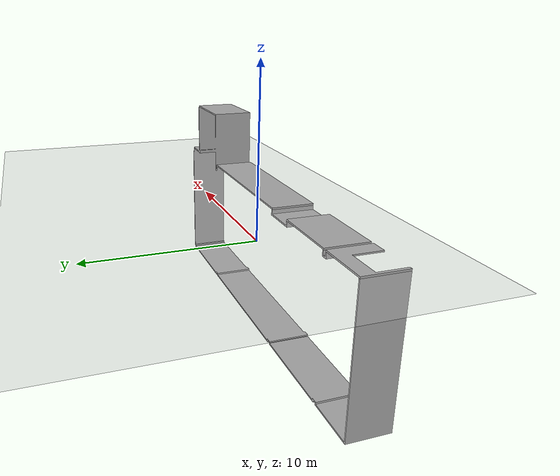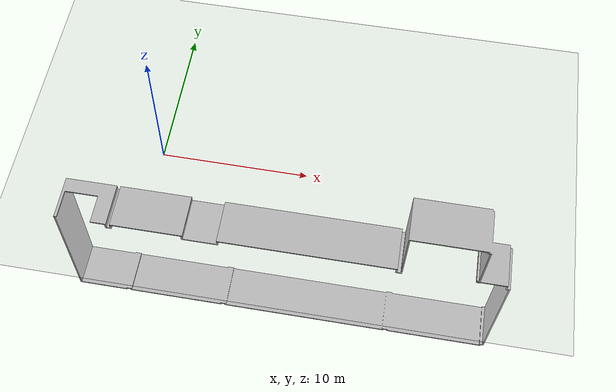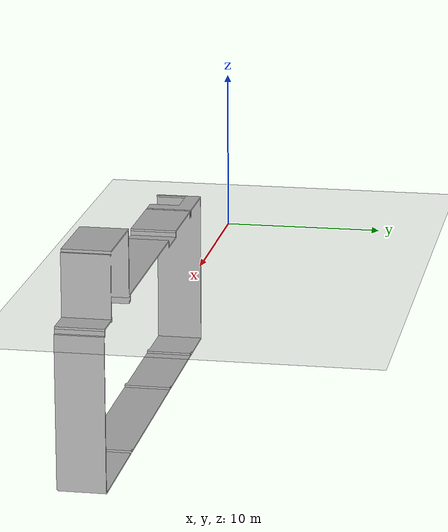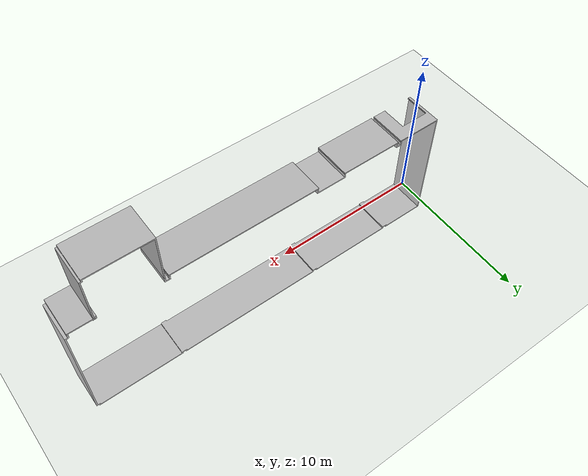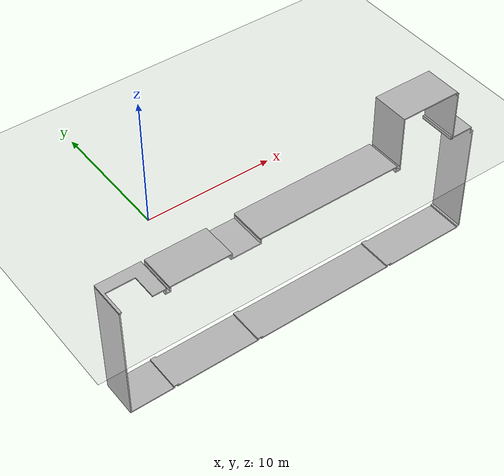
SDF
<?xml version="1.0" ?>
<sdf version="1.4">
  <world name="default">
    <include>
      <uri>model://ground_plane</uri>
    </include>
    <include>
      <uri>model://sun</uri>
    </include>
    <include>
      <uri>model://jdzx</uri>
    </include>
  </world>
</sdf>

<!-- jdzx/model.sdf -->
<sdf version='1.4'>
  <model name='jdzx'>
    <link name='room'>
      <pose>-6 -6 0 0 -0 0</pose>
      <inertial>
        <pose>0 0 0 0 -0 0</pose>
        <mass>47990.7</mass>
        <inertia>
          <ixx>0</ixx>
          <ixy>0</ixy>
          <ixz>-94.30111</ixz>
          <iyy>0</iyy>
          <iyz>0</iyz>
          <izz>0</izz>
        </inertia>
      </inertial>
      <collision name='room_collision'>
        <pose>0 0 0 0 -0 0</pose>
        <geometry>
          <mesh>
            <scale>1 1 1</scale>
            <uri>model://jdzx/meshes/room.stl</uri>
          </mesh>
        </geometry>
      </collision>
      <visual name='room_visual'>
        <pose>0 0 0 0 -0 0</pose>
        <geometry>
          <mesh>
            <scale>1 1 1</scale>
            <uri>model://jdzx/meshes/room.stl</uri>
          </mesh>
        </geometry>
      </visual>
      <velocity_decay>
        <linear>0</linear>
        <angular>0</angular>
      </velocity_decay>
    </link>
  </model>
</sdf>
